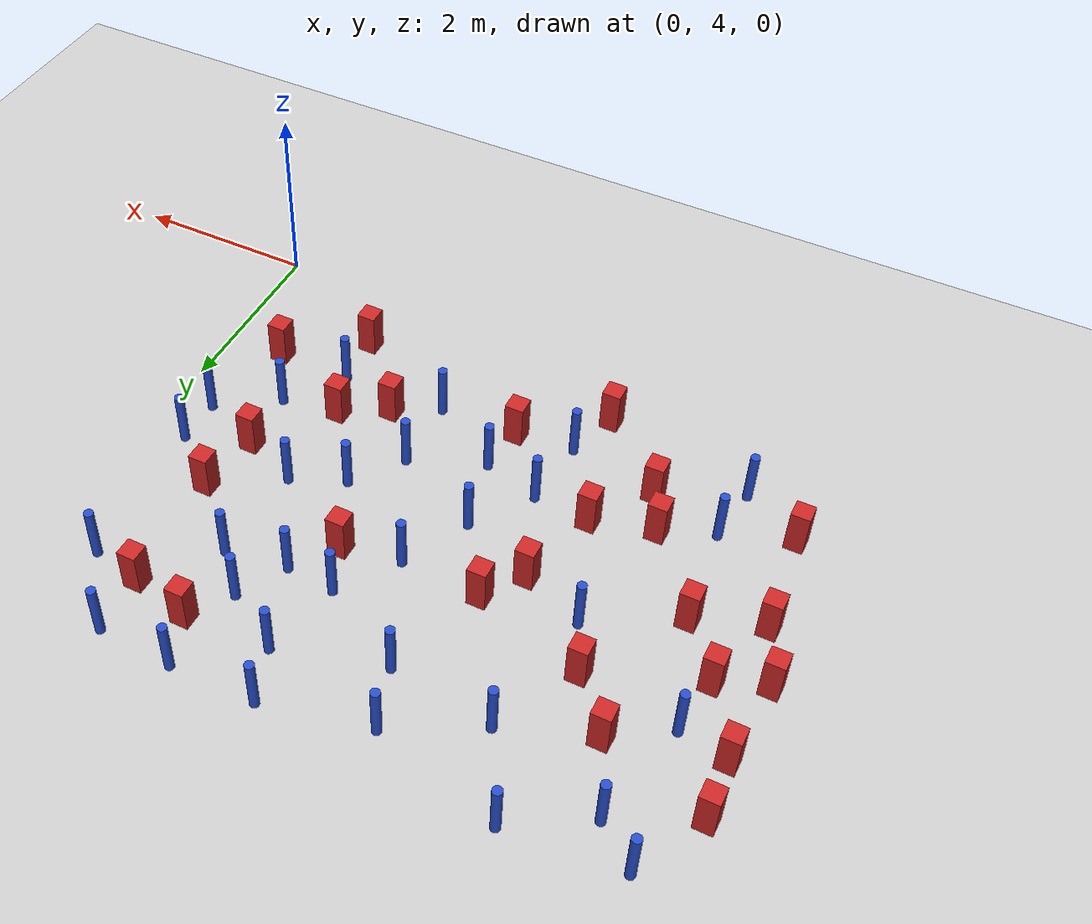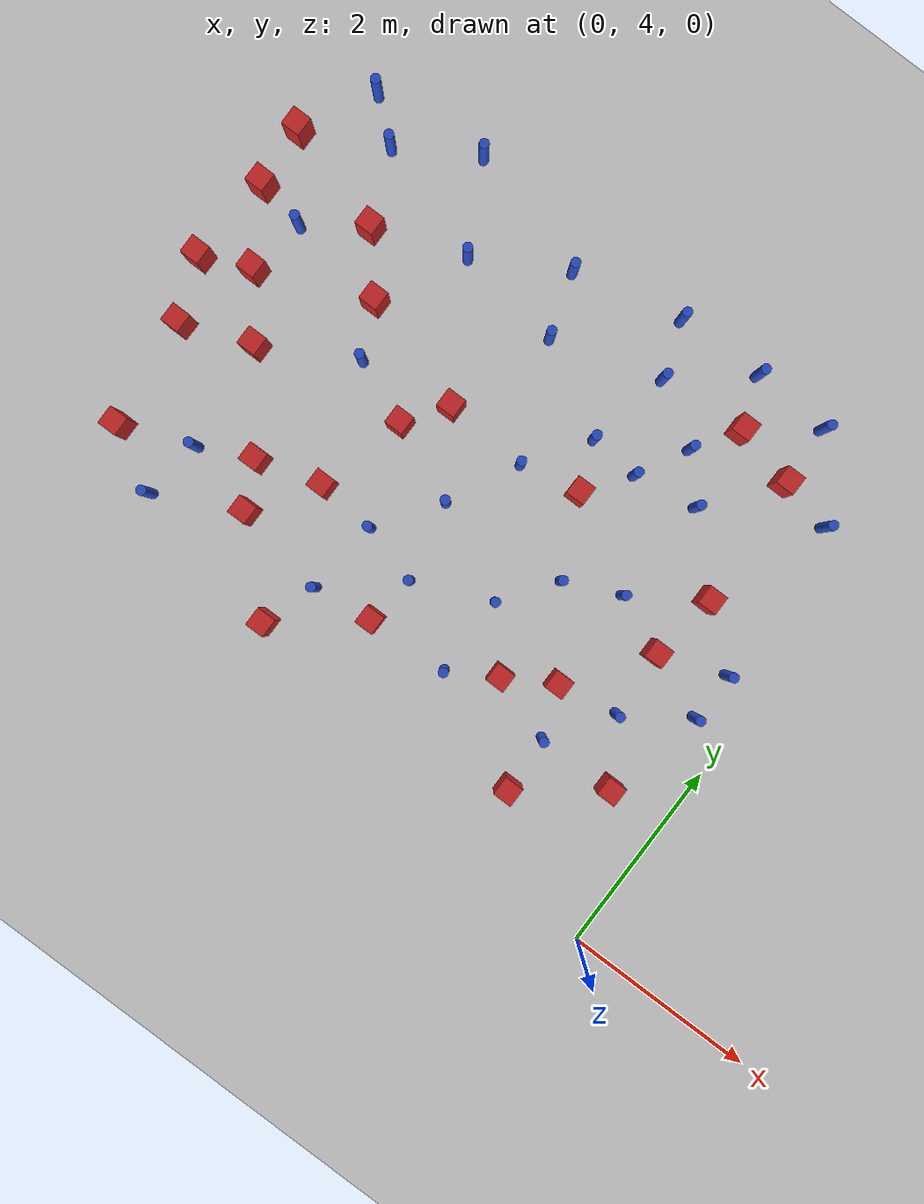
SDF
<sdf version="1.6">
 <world name="default">
  <model name="ground_plane">
   <static>1</static>
   <link name="link">
    <collision name="collision">
     <geometry><plane><normal>0 0 1</normal><size>100 100</size></plane></geometry>
     <surface><friction><ode><mu>100</mu><mu2>50</mu2></ode></friction></surface>
    </collision>
    <visual name="visual">
     <cast_shadows>0</cast_shadows>
     <geometry><plane><normal>0 0 1</normal><size>100 100</size></plane></geometry>
     <material>
      <ambient>1.0 1.0 1.0 1.0</ambient>
      <diffuse>0.8 0.8 0.8 1.0</diffuse>
      <specular>0.01 0.01 0.01 1.000000</specular>
     </material>
    </visual>
   </link>
  </model>
  <model name="square_post_obstacle0">
   <static>true</static>
   <pose>-4.36775121202 6.96467512662 -6.11067671241e-07 -5.50515727128e-06 -8.79689657224e-07 2.37013304536e-05</pose>
   <link name="link">
    <pose>0 0 0.25 0 -0 0</pose>
    <inertial>
     <mass>100</mass>
     <inertia>
      <ixx>0.166667</ixx>
      <ixy>0</ixy>
      <ixz>0</ixz>
      <iyy>0.166667</iyy>
      <iyz>0</iyz>
      <izz>0.166667</izz>
     </inertia>
    </inertial>
    <collision name="collision"><geometry><box><size>.2 .2 .5</size></box></geometry></collision>
    <visual name="visual">
     <geometry><box><size>.2 .2 .5</size></box></geometry>
     <material>
      <script><name>Gazebo/Red</name><uri>file://media/materials/scripts/gazebo.material</uri></script>
     </material>
    </visual>
   </link>
  </model>
  <model name="square_post_obstacle4">
   <static>true</static>
   <pose>-1.65749616319 5.88070329068 -6.11067671241e-07 -5.50515727128e-06 -8.79689657224e-07 2.37013304536e-05</pose>
   <link name="link">
    <pose>0 0 0.25 0 -0 0</pose>
    <inertial>
     <mass>100</mass>
     <inertia>
      <ixx>0.166667</ixx>
      <ixy>0</ixy>
      <ixz>0</ixz>
      <iyy>0.166667</iyy>
      <iyz>0</iyz>
      <izz>0.166667</izz>
     </inertia>
    </inertial>
    <collision name="collision"><geometry><box><size>.2 .2 .5</size></box></geometry></collision>
    <visual name="visual">
     <geometry><box><size>.2 .2 .5</size></box></geometry>
     <material>
      <script><name>Gazebo/Red</name><uri>file://media/materials/scripts/gazebo.material</uri></script>
     </material>
    </visual>
   </link>
  </model>
  <model name="square_post_obstacle15">
   <static>true</static>
   <pose>-5.04168076702 5.39787669439 -6.11067671241e-07 -5.50515727128e-06 -8.79689657224e-07 2.37013304536e-05</pose>
   <link name="link">
    <pose>0 0 0.25 0 -0 0</pose>
    <inertial>
     <mass>100</mass>
     <inertia>
      <ixx>0.166667</ixx>
      <ixy>0</ixy>
      <ixz>0</ixz>
      <iyy>0.166667</iyy>
      <iyz>0</iyz>
      <izz>0.166667</izz>
     </inertia>
    </inertial>
    <collision name="collision"><geometry><box><size>.2 .2 .5</size></box></geometry></collision>
    <visual name="visual">
     <geometry><box><size>.2 .2 .5</size></box></geometry>
     <material>
      <script><name>Gazebo/Red</name><uri>file://media/materials/scripts/gazebo.material</uri></script>
     </material>
    </visual>
   </link>
  </model>
  <model name="square_post_obstacle16">
   <static>true</static>
   <pose>-6.51756934402 5.33370531011 -6.11067671241e-07 -5.50515727128e-06 -8.79689657224e-07 2.37013304536e-05</pose>
   <link name="link">
    <pose>0 0 0.25 0 -0 0</pose>
    <inertial>
     <mass>100</mass>
     <inertia>
      <ixx>0.166667</ixx>
      <ixy>0</ixy>
      <ixz>0</ixz>
      <iyy>0.166667</iyy>
      <iyz>0</iyz>
      <izz>0.166667</izz>
     </inertia>
    </inertial>
    <collision name="collision"><geometry><box><size>.2 .2 .5</size></box></geometry></collision>
    <visual name="visual">
     <geometry><box><size>.2 .2 .5</size></box></geometry>
     <material>
      <script><name>Gazebo/Red</name><uri>file://media/materials/scripts/gazebo.material</uri></script>
     </material>
    </visual>
   </link>
  </model>
  <model name="pole_obstacle10">
   <static>true</static>
   <pose>-3.2098187899 7.34159491129 -9.47619616065e-06 5.49618799738e-07 2.3631041406e-07 -1.55090534801e-07</pose>
   <link name="link">
    <pose>0 0 0.3 0 -0 0</pose>
    <inertial>
     <mass>1</mass>
     <inertia><ixx>0.145833</ixx><ixy>0</ixy><ixz>0</ixz><iyy>0.145833</iyy><iyz>0</iyz><izz>0.125</izz></inertia>
    </inertial>
    <collision name="collision">
     <geometry><cylinder><radius>0.05</radius><length>.6</length></cylinder></geometry>
    </collision>
    <visual name="visual">
     <geometry><cylinder><radius>0.05</radius><length>.6</length></cylinder></geometry>
     <material>
      <script><name>Gazebo/Blue</name><uri>file://media/materials/scripts/gazebo.material</uri></script>
     </material>
    </visual>
   </link>
  </model>
  <model name="pole_obstacle17">
   <static>true</static>
   <pose>-1.90209949567 9.40279424727 -9.47619616065e-06 5.49618799737e-07 2.36310414046e-07 -1.55090534809e-07</pose>
   <link name="link">
    <pose>0 0 0.3 0 -0 0</pose>
    <inertial>
     <mass>1</mass>
     <inertia><ixx>0.145833</ixx><ixy>0</ixy><ixz>0</ixz><iyy>0.145833</iyy><iyz>0</iyz><izz>0.125</izz></inertia>
    </inertial>
    <collision name="collision">
     <geometry><cylinder><radius>0.05</radius><length>.6</length></cylinder></geometry>
    </collision>
    <visual name="visual">
     <geometry><cylinder><radius>0.05</radius><length>.6</length></cylinder></geometry>
     <material>
      <script><name>Gazebo/Blue</name><uri>file://media/materials/scripts/gazebo.material</uri></script>
     </material>
    </visual>
   </link>
  </model>
  <model name="pole_obstacle20">
   <static>true</static>
   <pose>-0.403235105057 6.91668516056 -9.47619616065e-06 5.49618799737e-07 2.36310414065e-07 -1.55090534796e-07</pose>
   <link name="link">
    <pose>0 0 0.3 0 -0 0</pose>
    <inertial>
     <mass>1</mass>
     <inertia><ixx>0.145833</ixx><ixy>0</ixy><ixz>0</ixz><iyy>0.145833</iyy><iyz>0</iyz><izz>0.125</izz></inertia>
    </inertial>
    <collision name="collision">
     <geometry><cylinder><radius>0.05</radius><length>.6</length></cylinder></geometry>
    </collision>
    <visual name="visual">
     <geometry><cylinder><radius>0.05</radius><length>.6</length></cylinder></geometry>
     <material>
      <script><name>Gazebo/Blue</name><uri>file://media/materials/scripts/gazebo.material</uri></script>
     </material>
    </visual>
   </link>
  </model>
  <model name="pole_obstacle25">
   <static>true</static>
   <pose>-2.6118868807 8.81742072287 -9.4761961606e-06 5.49618799729e-07 2.36310414e-07 -1.55090534824e-07</pose>
   <link name="link">
    <pose>0 0 0.3 0 -0 0</pose>
    <inertial>
     <mass>1</mass>
     <inertia><ixx>0.145833</ixx><ixy>0</ixy><ixz>0</ixz><iyy>0.145833</iyy><iyz>0</iyz><izz>0.125</izz></inertia>
    </inertial>
    <collision name="collision">
     <geometry><cylinder><radius>0.05</radius><length>.6</length></cylinder></geometry>
    </collision>
    <visual name="visual">
     <geometry><cylinder><radius>0.05</radius><length>.6</length></cylinder></geometry>
     <material>
      <script><name>Gazebo/Blue</name><uri>file://media/materials/scripts/gazebo.material</uri></script>
     </material>
    </visual>
   </link>
  </model>
  <model name="pole_obstacle27">
   <static>true</static>
   <pose>-6.04042868979 9.02992011734 -9.47619616065e-06 5.49618799737e-07 2.36310414065e-07 -1.55090534796e-07</pose>
   <link name="link">
    <pose>0 0 0.3 0 -0 0</pose>
    <inertial>
     <mass>1</mass>
     <inertia><ixx>0.145833</ixx><ixy>0</ixy><ixz>0</ixz><iyy>0.145833</iyy><iyz>0</iyz><izz>0.125</izz></inertia>
    </inertial>
    <collision name="collision">
     <geometry><cylinder><radius>0.05</radius><length>.6</length></cylinder></geometry>
    </collision>
    <visual name="visual">
     <geometry><cylinder><radius>0.05</radius><length>.6</length></cylinder></geometry>
     <material>
      <script><name>Gazebo/Blue</name><uri>file://media/materials/scripts/gazebo.material</uri></script>
     </material>
    </visual>
   </link>
  </model>
  <model name="pole_obstacle28">
   <static>true</static>
   <pose>-3.71763309645 8.48386491022 -9.4761961606e-06 5.49618799729e-07 2.36310414e-07 -1.55090534824e-07</pose>
   <link name="link">
    <pose>0 0 0.3 0 -0 0</pose>
    <inertial>
     <mass>1</mass>
     <inertia><ixx>0.145833</ixx><ixy>0</ixy><ixz>0</ixz><iyy>0.145833</iyy><iyz>0</iyz><izz>0.125</izz></inertia>
    </inertial>
    <collision name="collision">
     <geometry><cylinder><radius>0.05</radius><length>.6</length></cylinder></geometry>
    </collision>
    <visual name="visual">
     <geometry><cylinder><radius>0.05</radius><length>.6</length></cylinder></geometry>
     <material>
      <script><name>Gazebo/Blue</name><uri>file://media/materials/scripts/gazebo.material</uri></script>
     </material>
    </visual>
   </link>
  </model>
  <model name="pole_obstacle32">
   <static>true</static>
   <pose>-6.45330706016 9.3699237772 -9.47619616065e-06 5.49618799737e-07 2.36310414065e-07 -1.55090534796e-07</pose>
   <link name="link">
    <pose>0 0 0.3 0 -0 0</pose>
    <inertial>
     <mass>1</mass>
     <inertia><ixx>0.145833</ixx><ixy>0</ixy><ixz>0</ixz><iyy>0.145833</iyy><iyz>0</iyz><izz>0.125</izz></inertia>
    </inertial>
    <collision name="collision">
     <geometry><cylinder><radius>0.05</radius><length>.6</length></cylinder></geometry>
    </collision>
    <visual name="visual">
     <geometry><cylinder><radius>0.05</radius><length>.6</length></cylinder></geometry>
     <material>
      <script><name>Gazebo/Blue</name><uri>file://media/materials/scripts/gazebo.material</uri></script>
     </material>
    </visual>
   </link>
  </model>
  <model name="square_post_obstacle35">
   <static>true</static>
   <pose>-0.657242514761 5.37359519306 -6.11067671241e-07 -5.50515727128e-06 -8.79689657224e-07 2.37013304536e-05</pose>
   <link name="link">
    <pose>0 0 0.25 0 -0 0</pose>
    <inertial>
     <mass>100</mass>
     <inertia>
      <ixx>0.166667</ixx>
      <ixy>0</ixy>
      <ixz>0</ixz>
      <iyy>0.166667</iyy>
      <iyz>0</iyz>
      <izz>0.166667</izz>
     </inertia>
    </inertial>
    <collision name="collision"><geometry><box><size>.2 .2 .5</size></box></geometry></collision>
    <visual name="visual">
     <geometry><box><size>.2 .2 .5</size></box></geometry>
     <material>
      <script><name>Gazebo/Red</name><uri>file://media/materials/scripts/gazebo.material</uri></script>
     </material>
    </visual>
   </link>
  </model>
  <model name="pole_obstacle35">
   <static>true</static>
   <pose>-2.60899956291 6.13930942176 -9.47619616065e-06 5.49618799738e-07 2.3631041406e-07 -1.55090534801e-07</pose>
   <link name="link">
    <pose>0 0 0.3 0 -0 0</pose>
    <inertial>
     <mass>1</mass>
     <inertia><ixx>0.145833</ixx><ixy>0</ixy><ixz>0</ixz><iyy>0.145833</iyy><iyz>0</iyz><izz>0.125</izz></inertia>
    </inertial>
    <collision name="collision">
     <geometry><cylinder><radius>0.05</radius><length>.6</length></cylinder></geometry>
    </collision>
    <visual name="visual">
     <geometry><cylinder><radius>0.05</radius><length>.6</length></cylinder></geometry>
     <material>
      <script><name>Gazebo/Blue</name><uri>file://media/materials/scripts/gazebo.material</uri></script>
     </material>
    </visual>
   </link>
  </model>
  <model name="square_post_obstacle36">
   <static>true</static>
   <pose>-6.83716105573 8.62675024145 -6.11067671241e-07 -5.50515727128e-06 -8.79689657224e-07 2.37013304536e-05</pose>
   <link name="link">
    <pose>0 0 0.25 0 -0 0</pose>
    <inertial>
     <mass>100</mass>
     <inertia>
      <ixx>0.166667</ixx>
      <ixy>0</ixy>
      <ixz>0</ixz>
      <iyy>0.166667</iyy>
      <iyz>0</iyz>
      <izz>0.166667</izz>
     </inertia>
    </inertial>
    <collision name="collision"><geometry><box><size>.2 .2 .5</size></box></geometry></collision>
    <visual name="visual">
     <geometry><box><size>.2 .2 .5</size></box></geometry>
     <material>
      <script><name>Gazebo/Red</name><uri>file://media/materials/scripts/gazebo.material</uri></script>
     </material>
    </visual>
   </link>
  </model>
  <model name="pole_obstacle40">
   <static>true</static>
   <pose>-2.60498700411 5.31970703041 -9.47619616065e-06 5.49618799738e-07 2.3631041406e-07 -1.55090534801e-07</pose>
   <link name="link">
    <pose>0 0 0.3 0 -0 0</pose>
    <inertial>
     <mass>1</mass>
     <inertia><ixx>0.145833</ixx><ixy>0</ixy><ixz>0</ixz><iyy>0.145833</iyy><iyz>0</iyz><izz>0.125</izz></inertia>
    </inertial>
    <collision name="collision">
     <geometry><cylinder><radius>0.05</radius><length>.6</length></cylinder></geometry>
    </collision>
    <visual name="visual">
     <geometry><cylinder><radius>0.05</radius><length>.6</length></cylinder></geometry>
     <material>
      <script><name>Gazebo/Blue</name><uri>file://media/materials/scripts/gazebo.material</uri></script>
     </material>
    </visual>
   </link>
  </model>
  <model name="pole_obstacle44">
   <static>true</static>
   <pose>-2.22651225853 6.68115342986 -9.47619616065e-06 5.49618799738e-07 2.3631041406e-07 -1.55090534801e-07</pose>
   <link name="link">
    <pose>0 0 0.3 0 -0 0</pose>
    <inertial>
     <mass>1</mass>
     <inertia><ixx>0.145833</ixx><ixy>0</ixy><ixz>0</ixz><iyy>0.145833</iyy><iyz>0</iyz><izz>0.125</izz></inertia>
    </inertial>
    <collision name="collision">
     <geometry><cylinder><radius>0.05</radius><length>.6</length></cylinder></geometry>
    </collision>
    <visual name="visual">
     <geometry><cylinder><radius>0.05</radius><length>.6</length></cylinder></geometry>
     <material>
      <script><name>Gazebo/Blue</name><uri>file://media/materials/scripts/gazebo.material</uri></script>
     </material>
    </visual>
   </link>
  </model>
  <model name="square_post_obstacle46">
   <static>true</static>
   <pose>-6.79474108668 7.99877416249 -6.11067671241e-07 -5.50515727128e-06 -8.79689657224e-07 2.37013304536e-05</pose>
   <link name="link">
    <pose>0 0 0.25 0 -0 0</pose>
    <inertial>
     <mass>100</mass>
     <inertia>
      <ixx>0.166667</ixx>
      <ixy>0</ixy>
      <ixz>0</ixz>
      <iyy>0.166667</iyy>
      <iyz>0</iyz>
      <izz>0.166667</izz>
     </inertia>
    </inertial>
    <collision name="collision"><geometry><box><size>.2 .2 .5</size></box></geometry></collision>
    <visual name="visual">
     <geometry><box><size>.2 .2 .5</size></box></geometry>
     <material>
      <script><name>Gazebo/Red</name><uri>file://media/materials/scripts/gazebo.material</uri></script>
     </material>
    </visual>
   </link>
  </model>
  <model name="pole_obstacle47">
   <static>true</static>
   <pose>-0.408108234437 6.40497784872 -9.47619616065e-06 5.49618799737e-07 2.36310414065e-07 -1.55090534796e-07</pose>
   <link name="link">
    <pose>0 0 0.3 0 -0 0</pose>
    <inertial>
     <mass>1</mass>
     <inertia><ixx>0.145833</ixx><ixy>0</ixy><ixz>0</ixz><iyy>0.145833</iyy><iyz>0</iyz><izz>0.125</izz></inertia>
    </inertial>
    <collision name="collision">
     <geometry><cylinder><radius>0.05</radius><length>.6</length></cylinder></geometry>
    </collision>
    <visual name="visual">
     <geometry><cylinder><radius>0.05</radius><length>.6</length></cylinder></geometry>
     <material>
      <script><name>Gazebo/Blue</name><uri>file://media/materials/scripts/gazebo.material</uri></script>
     </material>
    </visual>
   </link>
  </model>
  <model name="square_post_obstacle53">
   <static>true</static>
   <pose>-3.45824758311 5.29231079637 -6.11067671241e-07 -5.50515727128e-06 -8.79689657224e-07 2.37013304536e-05</pose>
   <link name="link">
    <pose>0 0 0.25 0 -0 0</pose>
    <inertial>
     <mass>100</mass>
     <inertia>
      <ixx>0.166667</ixx>
      <ixy>0</ixy>
      <ixz>0</ixz>
      <iyy>0.166667</iyy>
      <iyz>0</iyz>
      <izz>0.166667</izz>
     </inertia>
    </inertial>
    <collision name="collision"><geometry><box><size>.2 .2 .5</size></box></geometry></collision>
    <visual name="visual">
     <geometry><box><size>.2 .2 .5</size></box></geometry>
     <material>
      <script><name>Gazebo/Red</name><uri>file://media/materials/scripts/gazebo.material</uri></script>
     </material>
    </visual>
   </link>
  </model>
  <model name="square_post_obstacle58">
   <static>true</static>
   <pose>-5.92664811069 6.72352702947 -6.11067671241e-07 -5.50515727128e-06 -8.79689657224e-07 2.37013304536e-05</pose>
   <link name="link">
    <pose>0 0 0.25 0 -0 0</pose>
    <inertial>
     <mass>100</mass>
     <inertia>
      <ixx>0.166667</ixx>
      <ixy>0</ixy>
      <ixz>0</ixz>
      <iyy>0.166667</iyy>
      <iyz>0</iyz>
      <izz>0.166667</izz>
     </inertia>
    </inertial>
    <collision name="collision"><geometry><box><size>.2 .2 .5</size></box></geometry></collision>
    <visual name="visual">
     <geometry><box><size>.2 .2 .5</size></box></geometry>
     <material>
      <script><name>Gazebo/Red</name><uri>file://media/materials/scripts/gazebo.material</uri></script>
     </material>
    </visual>
   </link>
  </model>
  <model name="square_post_obstacle63">
   <static>true</static>
   <pose>-1.08177401858 6.67963667109 -6.11067671241e-07 -5.50515727128e-06 -8.79689657224e-07 2.37013304536e-05</pose>
   <link name="link">
    <pose>0 0 0.25 0 -0 0</pose>
    <inertial>
     <mass>100</mass>
     <inertia>
      <ixx>0.166667</ixx>
      <ixy>0</ixy>
      <ixz>0</ixz>
      <iyy>0.166667</iyy>
      <iyz>0</iyz>
      <izz>0.166667</izz>
     </inertia>
    </inertial>
    <collision name="collision"><geometry><box><size>.2 .2 .5</size></box></geometry></collision>
    <visual name="visual">
     <geometry><box><size>.2 .2 .5</size></box></geometry>
     <material>
      <script><name>Gazebo/Red</name><uri>file://media/materials/scripts/gazebo.material</uri></script>
     </material>
    </visual>
   </link>
  </model>
  <model name="square_post_obstacle66">
   <static>true</static>
   <pose>-6.63202839177 6.46490370239 -6.11067671241e-07 -5.50515727128e-06 -8.79689657224e-07 2.37013304536e-05</pose>
   <link name="link">
    <pose>0 0 0.25 0 -0 0</pose>
    <inertial>
     <mass>100</mass>
     <inertia>
      <ixx>0.166667</ixx>
      <ixy>0</ixy>
      <ixz>0</ixz>
      <iyy>0.166667</iyy>
      <iyz>0</iyz>
      <izz>0.166667</izz>
     </inertia>
    </inertial>
    <collision name="collision"><geometry><box><size>.2 .2 .5</size></box></geometry></collision>
    <visual name="visual">
     <geometry><box><size>.2 .2 .5</size></box></geometry>
     <material>
      <script><name>Gazebo/Red</name><uri>file://media/materials/scripts/gazebo.material</uri></script>
     </material>
    </visual>
   </link>
  </model>
  <model name="square_post_obstacle75">
   <static>true</static>
   <pose>-4.26387419808 4.65417128725 -6.11067671241e-07 -5.50515727128e-06 -8.79689657224e-07 2.37013304536e-05</pose>
   <link name="link">
    <pose>0 0 0.25 0 -0 0</pose>
    <inertial>
     <mass>100</mass>
     <inertia>
      <ixx>0.166667</ixx>
      <ixy>0</ixy>
      <ixz>0</ixz>
      <iyy>0.166667</iyy>
      <iyz>0</iyz>
      <izz>0.166667</izz>
     </inertia>
    </inertial>
    <collision name="collision"><geometry><box><size>.2 .2 .5</size></box></geometry></collision>
    <visual name="visual">
     <geometry><box><size>.2 .2 .5</size></box></geometry>
     <material>
      <script><name>Gazebo/Red</name><uri>file://media/materials/scripts/gazebo.material</uri></script>
     </material>
    </visual>
   </link>
  </model>
  <model name="pole_obstacle70">
   <static>true</static>
   <pose>-3.56325731318 6.61824658838 -9.47619616065e-06 5.49618799738e-07 2.3631041406e-07 -1.55090534801e-07</pose>
   <link name="link">
    <pose>0 0 0.3 0 -0 0</pose>
    <inertial>
     <mass>1</mass>
     <inertia><ixx>0.145833</ixx><ixy>0</ixy><ixz>0</ixz><iyy>0.145833</iyy><iyz>0</iyz><izz>0.125</izz></inertia>
    </inertial>
    <collision name="collision">
     <geometry><cylinder><radius>0.05</radius><length>.6</length></cylinder></geometry>
    </collision>
    <visual name="visual">
     <geometry><cylinder><radius>0.05</radius><length>.6</length></cylinder></geometry>
     <material>
      <script><name>Gazebo/Blue</name><uri>file://media/materials/scripts/gazebo.material</uri></script>
     </material>
    </visual>
   </link>
  </model>
  <model name="pole_obstacle76">
   <static>true</static>
   <pose>-5.02693889035 7.22763337648 -9.47619616065e-06 5.49618799737e-07 2.36310414037e-07 -1.55090534814e-07</pose>
   <link name="link">
    <pose>0 0 0.3 0 -0 0</pose>
    <inertial>
     <mass>1</mass>
     <inertia><ixx>0.145833</ixx><ixy>0</ixy><ixz>0</ixz><iyy>0.145833</iyy><iyz>0</iyz><izz>0.125</izz></inertia>
    </inertial>
    <collision name="collision">
     <geometry><cylinder><radius>0.05</radius><length>.6</length></cylinder></geometry>
    </collision>
    <visual name="visual">
     <geometry><cylinder><radius>0.05</radius><length>.6</length></cylinder></geometry>
     <material>
      <script><name>Gazebo/Blue</name><uri>file://media/materials/scripts/gazebo.material</uri></script>
     </material>
    </visual>
   </link>
  </model>
  <model name="square_post_obstacle80">
   <static>true</static>
   <pose>-6.87133850633 7.08793085189 -6.11067671241e-07 -5.50515727128e-06 -8.79689657224e-07 2.37013304536e-05</pose>
   <link name="link">
    <pose>0 0 0.25 0 -0 0</pose>
    <inertial>
     <mass>100</mass>
     <inertia>
      <ixx>0.166667</ixx>
      <ixy>0</ixy>
      <ixz>0</ixz>
      <iyy>0.166667</iyy>
      <iyz>0</iyz>
      <izz>0.166667</izz>
     </inertia>
    </inertial>
    <collision name="collision"><geometry><box><size>.2 .2 .5</size></box></geometry></collision>
    <visual name="visual">
     <geometry><box><size>.2 .2 .5</size></box></geometry>
     <material>
      <script><name>Gazebo/Red</name><uri>file://media/materials/scripts/gazebo.material</uri></script>
     </material>
    </visual>
   </link>
  </model>
  <model name="pole_obstacle87">
   <static>true</static>
   <pose>-3.92366138487 9.12555584919 -9.4761961606e-06 5.49618799729e-07 2.36310414e-07 -1.55090534824e-07</pose>
   <link name="link">
    <pose>0 0 0.3 0 -0 0</pose>
    <inertial>
     <mass>1</mass>
     <inertia><ixx>0.145833</ixx><ixy>0</ixy><ixz>0</ixz><iyy>0.145833</iyy><iyz>0</iyz><izz>0.125</izz></inertia>
    </inertial>
    <collision name="collision">
     <geometry><cylinder><radius>0.05</radius><length>.6</length></cylinder></geometry>
    </collision>
    <visual name="visual">
     <geometry><cylinder><radius>0.05</radius><length>.6</length></cylinder></geometry>
     <material>
      <script><name>Gazebo/Blue</name><uri>file://media/materials/scripts/gazebo.material</uri></script>
     </material>
    </visual>
   </link>
  </model>
  <model name="square_post_obstacle82">
   <static>true</static>
   <pose>-2.14103028906 5.60005458471 -6.11067671241e-07 -5.50515727128e-06 -8.79689657224e-07 2.37013304536e-05</pose>
   <link name="link">
    <pose>0 0 0.25 0 -0 0</pose>
    <inertial>
     <mass>100</mass>
     <inertia>
      <ixx>0.166667</ixx>
      <ixy>0</ixy>
      <ixz>0</ixz>
      <iyy>0.166667</iyy>
      <iyz>0</iyz>
      <izz>0.166667</izz>
     </inertia>
    </inertial>
    <collision name="collision"><geometry><box><size>.2 .2 .5</size></box></geometry></collision>
    <visual name="visual">
     <geometry><box><size>.2 .2 .5</size></box></geometry>
     <material>
      <script><name>Gazebo/Red</name><uri>file://media/materials/scripts/gazebo.material</uri></script>
     </material>
    </visual>
   </link>
  </model>
  <model name="pole_obstacle97">
   <static>true</static>
   <pose>-5.80650299912 5.60463683839 -9.47619616065e-06 5.49618799737e-07 2.36310414037e-07 -1.55090534814e-07</pose>
   <link name="link">
    <pose>0 0 0.3 0 -0 0</pose>
    <inertial>
     <mass>1</mass>
     <inertia><ixx>0.145833</ixx><ixy>0</ixy><ixz>0</ixz><iyy>0.145833</iyy><iyz>0</iyz><izz>0.125</izz></inertia>
    </inertial>
    <collision name="collision">
     <geometry><cylinder><radius>0.05</radius><length>.6</length></cylinder></geometry>
    </collision>
    <visual name="visual">
     <geometry><cylinder><radius>0.05</radius><length>.6</length></cylinder></geometry>
     <material>
      <script><name>Gazebo/Blue</name><uri>file://media/materials/scripts/gazebo.material</uri></script>
     </material>
    </visual>
   </link>
  </model>
  <model name="pole_obstacle102">
   <static>true</static>
   <pose>-3.38737771692 5.81071426034 -9.47619616065e-06 5.49618799738e-07 2.3631041406e-07 -1.55090534801e-07</pose>
   <link name="link">
    <pose>0 0 0.3 0 -0 0</pose>
    <inertial>
     <mass>1</mass>
     <inertia><ixx>0.145833</ixx><ixy>0</ixy><ixz>0</ixz><iyy>0.145833</iyy><iyz>0</iyz><izz>0.125</izz></inertia>
    </inertial>
    <collision name="collision">
     <geometry><cylinder><radius>0.05</radius><length>.6</length></cylinder></geometry>
    </collision>
    <visual name="visual">
     <geometry><cylinder><radius>0.05</radius><length>.6</length></cylinder></geometry>
     <material>
      <script><name>Gazebo/Blue</name><uri>file://media/materials/scripts/gazebo.material</uri></script>
     </material>
    </visual>
   </link>
  </model>
  <model name="pole_obstacle109">
   <static>true</static>
   <pose>-0.517932447151 8.61292572311 -9.47619616065e-06 5.49618799737e-07 2.36310414028e-07 -1.55090534819e-07</pose>
   <link name="link">
    <pose>0 0 0.3 0 -0 0</pose>
    <inertial>
     <mass>1</mass>
     <inertia><ixx>0.145833</ixx><ixy>0</ixy><ixz>0</ixz><iyy>0.145833</iyy><iyz>0</iyz><izz>0.125</izz></inertia>
    </inertial>
    <collision name="collision">
     <geometry><cylinder><radius>0.05</radius><length>.6</length></cylinder></geometry>
    </collision>
    <visual name="visual">
     <geometry><cylinder><radius>0.05</radius><length>.6</length></cylinder></geometry>
     <material>
      <script><name>Gazebo/Blue</name><uri>file://media/materials/scripts/gazebo.material</uri></script>
     </material>
    </visual>
   </link>
  </model>
  <model name="square_post_obstacle101">
   <static>true</static>
   <pose>-5.72206664603 8.29399079468 -6.11067671241e-07 -5.50515727128e-06 -8.79689657224e-07 2.37013304536e-05</pose>
   <link name="link">
    <pose>0 0 0.25 0 -0 0</pose>
    <inertial>
     <mass>100</mass>
     <inertia>
      <ixx>0.166667</ixx>
      <ixy>0</ixy>
      <ixz>0</ixz>
      <iyy>0.166667</iyy>
      <iyz>0</iyz>
      <izz>0.166667</izz>
     </inertia>
    </inertial>
    <collision name="collision"><geometry><box><size>.2 .2 .5</size></box></geometry></collision>
    <visual name="visual">
     <geometry><box><size>.2 .2 .5</size></box></geometry>
     <material>
      <script><name>Gazebo/Red</name><uri>file://media/materials/scripts/gazebo.material</uri></script>
     </material>
    </visual>
   </link>
  </model>
  <model name="pole_obstacle114">
   <static>true</static>
   <pose>-1.67037229544 6.92799265446 -9.47619616065e-06 5.49618799737e-07 2.36310414061e-07 -1.550905348e-07</pose>
   <link name="link">
    <pose>0 0 0.3 0 -0 0</pose>
    <inertial>
     <mass>1</mass>
     <inertia><ixx>0.145833</ixx><ixy>0</ixy><ixz>0</ixz><iyy>0.145833</iyy><iyz>0</iyz><izz>0.125</izz></inertia>
    </inertial>
    <collision name="collision">
     <geometry><cylinder><radius>0.05</radius><length>.6</length></cylinder></geometry>
    </collision>
    <visual name="visual">
     <geometry><cylinder><radius>0.05</radius><length>.6</length></cylinder></geometry>
     <material>
      <script><name>Gazebo/Blue</name><uri>file://media/materials/scripts/gazebo.material</uri></script>
     </material>
    </visual>
   </link>
  </model>
  <model name="pole_obstacle121">
   <static>true</static>
   <pose>-5.27555187155 9.49643963434 -9.47619616065e-06 5.49618799737e-07 2.36310414065e-07 -1.55090534796e-07</pose>
   <link name="link">
    <pose>0 0 0.3 0 -0 0</pose>
    <inertial>
     <mass>1</mass>
     <inertia><ixx>0.145833</ixx><ixy>0</ixy><ixz>0</ixz><iyy>0.145833</iyy><iyz>0</iyz><izz>0.125</izz></inertia>
    </inertial>
    <collision name="collision">
     <geometry><cylinder><radius>0.05</radius><length>.6</length></cylinder></geometry>
    </collision>
    <visual name="visual">
     <geometry><cylinder><radius>0.05</radius><length>.6</length></cylinder></geometry>
     <material>
      <script><name>Gazebo/Blue</name><uri>file://media/materials/scripts/gazebo.material</uri></script>
     </material>
    </visual>
   </link>
  </model>
  <model name="square_post_obstacle119">
   <static>true</static>
   <pose>-6.37513384591 7.29701682706 -6.11067671241e-07 -5.50515727128e-06 -8.79689657224e-07 2.37013304536e-05</pose>
   <link name="link">
    <pose>0 0 0.25 0 -0 0</pose>
    <inertial>
     <mass>100</mass>
     <inertia>
      <ixx>0.166667</ixx>
      <ixy>0</ixy>
      <ixz>0</ixz>
      <iyy>0.166667</iyy>
      <iyz>0</iyz>
      <izz>0.166667</izz>
     </inertia>
    </inertial>
    <collision name="collision"><geometry><box><size>.2 .2 .5</size></box></geometry></collision>
    <visual name="visual">
     <geometry><box><size>.2 .2 .5</size></box></geometry>
     <material>
      <script><name>Gazebo/Red</name><uri>file://media/materials/scripts/gazebo.material</uri></script>
     </material>
    </visual>
   </link>
  </model>
  <model name="square_post_obstacle121">
   <static>true</static>
   <pose>-5.26655114665 7.75356603395 -6.11067671241e-07 -5.50515727128e-06 -8.79689657224e-07 2.37013304536e-05</pose>
   <link name="link">
    <pose>0 0 0.25 0 -0 0</pose>
    <inertial>
     <mass>100</mass>
     <inertia>
      <ixx>0.166667</ixx>
      <ixy>0</ixy>
      <ixz>0</ixz>
      <iyy>0.166667</iyy>
      <iyz>0</iyz>
      <izz>0.166667</izz>
     </inertia>
    </inertial>
    <collision name="collision"><geometry><box><size>.2 .2 .5</size></box></geometry></collision>
    <visual name="visual">
     <geometry><box><size>.2 .2 .5</size></box></geometry>
     <material>
      <script><name>Gazebo/Red</name><uri>file://media/materials/scripts/gazebo.material</uri></script>
     </material>
    </visual>
   </link>
  </model>
  <model name="pole_obstacle143">
   <static>true</static>
   <pose>-5.89027748801 4.9777301575 -9.47619616065e-06 5.49618799737e-07 2.36310414037e-07 -1.55090534814e-07</pose>
   <link name="link">
    <pose>0 0 0.3 0 -0 0</pose>
    <inertial>
     <mass>1</mass>
     <inertia><ixx>0.145833</ixx><ixy>0</ixy><ixz>0</ixz><iyy>0.145833</iyy><iyz>0</iyz><izz>0.125</izz></inertia>
    </inertial>
    <collision name="collision">
     <geometry><cylinder><radius>0.05</radius><length>.6</length></cylinder></geometry>
    </collision>
    <visual name="visual">
     <geometry><cylinder><radius>0.05</radius><length>.6</length></cylinder></geometry>
     <material>
      <script><name>Gazebo/Blue</name><uri>file://media/materials/scripts/gazebo.material</uri></script>
     </material>
    </visual>
   </link>
  </model>
  <model name="pole_obstacle146">
   <static>true</static>
   <pose>-2.8094771079 9.38460287068 -9.4761961606e-06 5.49618799729e-07 2.36310414e-07 -1.55090534824e-07</pose>
   <link name="link">
    <pose>0 0 0.3 0 -0 0</pose>
    <inertial>
     <mass>1</mass>
     <inertia><ixx>0.145833</ixx><ixy>0</ixy><ixz>0</ixz><iyy>0.145833</iyy><iyz>0</iyz><izz>0.125</izz></inertia>
    </inertial>
    <collision name="collision">
     <geometry><cylinder><radius>0.05</radius><length>.6</length></cylinder></geometry>
    </collision>
    <visual name="visual">
     <geometry><cylinder><radius>0.05</radius><length>.6</length></cylinder></geometry>
     <material>
      <script><name>Gazebo/Blue</name><uri>file://media/materials/scripts/gazebo.material</uri></script>
     </material>
    </visual>
   </link>
  </model>
  <model name="square_post_obstacle138">
   <static>true</static>
   <pose>-4.07399203316 7.38581984988 -6.11067671241e-07 -5.50515727128e-06 -8.79689657224e-07 2.37013304536e-05</pose>
   <link name="link">
    <pose>0 0 0.25 0 -0 0</pose>
    <inertial>
     <mass>100</mass>
     <inertia>
      <ixx>0.166667</ixx>
      <ixy>0</ixy>
      <ixz>0</ixz>
      <iyy>0.166667</iyy>
      <iyz>0</iyz>
      <izz>0.166667</izz>
     </inertia>
    </inertial>
    <collision name="collision"><geometry><box><size>.2 .2 .5</size></box></geometry></collision>
    <visual name="visual">
     <geometry><box><size>.2 .2 .5</size></box></geometry>
     <material>
      <script><name>Gazebo/Red</name><uri>file://media/materials/scripts/gazebo.material</uri></script>
     </material>
    </visual>
   </link>
  </model>
  <model name="square_post_obstacle148">
   <static>true</static>
   <pose>-1.71357395256 8.88058878771 -6.11067671241e-07 -5.50515727128e-06 -8.79689657224e-07 2.37013304536e-05</pose>
   <link name="link">
    <pose>0 0 0.25 0 -0 0</pose>
    <inertial>
     <mass>100</mass>
     <inertia>
      <ixx>0.166667</ixx>
      <ixy>0</ixy>
      <ixz>0</ixz>
      <iyy>0.166667</iyy>
      <iyz>0</iyz>
      <izz>0.166667</izz>
     </inertia>
    </inertial>
    <collision name="collision"><geometry><box><size>.2 .2 .5</size></box></geometry></collision>
    <visual name="visual">
     <geometry><box><size>.2 .2 .5</size></box></geometry>
     <material>
      <script><name>Gazebo/Red</name><uri>file://media/materials/scripts/gazebo.material</uri></script>
     </material>
    </visual>
   </link>
  </model>
  <model name="square_post_obstacle153">
   <static>true</static>
   <pose>-2.59848437482 7.46576263006 -6.11067671241e-07 -5.50515727128e-06 -8.79689657224e-07 2.37013304536e-05</pose>
   <link name="link">
    <pose>0 0 0.25 0 -0 0</pose>
    <inertial>
     <mass>100</mass>
     <inertia>
      <ixx>0.166667</ixx>
      <ixy>0</ixy>
      <ixz>0</ixz>
      <iyy>0.166667</iyy>
      <iyz>0</iyz>
      <izz>0.166667</izz>
     </inertia>
    </inertial>
    <collision name="collision"><geometry><box><size>.2 .2 .5</size></box></geometry></collision>
    <visual name="visual">
     <geometry><box><size>.2 .2 .5</size></box></geometry>
     <material>
      <script><name>Gazebo/Red</name><uri>file://media/materials/scripts/gazebo.material</uri></script>
     </material>
    </visual>
   </link>
  </model>
  <model name="square_post_obstacle157">
   <static>true</static>
   <pose>-4.60528616603 6.0438935402 -6.11067671241e-07 -5.50515727128e-06 -8.79689657224e-07 2.37013304536e-05</pose>
   <link name="link">
    <pose>0 0 0.25 0 -0 0</pose>
    <inertial>
     <mass>100</mass>
     <inertia>
      <ixx>0.166667</ixx>
      <ixy>0</ixy>
      <ixz>0</ixz>
      <iyy>0.166667</iyy>
      <iyz>0</iyz>
      <izz>0.166667</izz>
     </inertia>
    </inertial>
    <collision name="collision"><geometry><box><size>.2 .2 .5</size></box></geometry></collision>
    <visual name="visual">
     <geometry><box><size>.2 .2 .5</size></box></geometry>
     <material>
      <script><name>Gazebo/Red</name><uri>file://media/materials/scripts/gazebo.material</uri></script>
     </material>
    </visual>
   </link>
  </model>
  <model name="square_post_obstacle161">
   <static>true</static>
   <pose>-0.983715764431 7.38767072436 -6.11067671241e-07 -5.50515727128e-06 -8.79689657224e-07 2.37013304536e-05</pose>
   <link name="link">
    <pose>0 0 0.25 0 -0 0</pose>
    <inertial>
     <mass>100</mass>
     <inertia>
      <ixx>0.166667</ixx>
      <ixy>0</ixy>
      <ixz>0</ixz>
      <iyy>0.166667</iyy>
      <iyz>0</iyz>
      <izz>0.166667</izz>
     </inertia>
    </inertial>
    <collision name="collision"><geometry><box><size>.2 .2 .5</size></box></geometry></collision>
    <visual name="visual">
     <geometry><box><size>.2 .2 .5</size></box></geometry>
     <material>
      <script><name>Gazebo/Red</name><uri>file://media/materials/scripts/gazebo.material</uri></script>
     </material>
    </visual>
   </link>
  </model>
  <model name="pole_obstacle171">
   <static>true</static>
   <pose>-4.81518454954 8.63069309846 -9.47619616065e-06 5.49618799737e-07 2.36310414065e-07 -1.55090534796e-07</pose>
   <link name="link">
    <pose>0 0 0.3 0 -0 0</pose>
    <inertial>
     <mass>1</mass>
     <inertia><ixx>0.145833</ixx><ixy>0</ixy><ixz>0</ixz><iyy>0.145833</iyy><iyz>0</iyz><izz>0.125</izz></inertia>
    </inertial>
    <collision name="collision">
     <geometry><cylinder><radius>0.05</radius><length>.6</length></cylinder></geometry>
    </collision>
    <visual name="visual">
     <geometry><cylinder><radius>0.05</radius><length>.6</length></cylinder></geometry>
     <material>
      <script><name>Gazebo/Blue</name><uri>file://media/materials/scripts/gazebo.material</uri></script>
     </material>
    </visual>
   </link>
  </model>
  <model name="pole_obstacle177">
   <static>true</static>
   <pose>-2.271951455 7.91819381444 -9.47619616065e-06 5.49618799738e-07 2.3631041406e-07 -1.55090534801e-07</pose>
   <link name="link">
    <pose>0 0 0.3 0 -0 0</pose>
    <inertial>
     <mass>1</mass>
     <inertia><ixx>0.145833</ixx><ixy>0</ixy><ixz>0</ixz><iyy>0.145833</iyy><iyz>0</iyz><izz>0.125</izz></inertia>
    </inertial>
    <collision name="collision">
     <geometry><cylinder><radius>0.05</radius><length>.6</length></cylinder></geometry>
    </collision>
    <visual name="visual">
     <geometry><cylinder><radius>0.05</radius><length>.6</length></cylinder></geometry>
     <material>
      <script><name>Gazebo/Blue</name><uri>file://media/materials/scripts/gazebo.material</uri></script>
     </material>
    </visual>
   </link>
  </model>
  <model name="pole_obstacle180">
   <static>true</static>
   <pose>-1.03104101846 5.98129211732 -9.47619616065e-06 5.49618799737e-07 2.36310414062e-07 -1.55090534799e-07</pose>
   <link name="link">
    <pose>0 0 0.3 0 -0 0</pose>
    <inertial>
     <mass>1</mass>
     <inertia><ixx>0.145833</ixx><ixy>0</ixy><ixz>0</ixz><iyy>0.145833</iyy><iyz>0</iyz><izz>0.125</izz></inertia>
    </inertial>
    <collision name="collision">
     <geometry><cylinder><radius>0.05</radius><length>.6</length></cylinder></geometry>
    </collision>
    <visual name="visual">
     <geometry><cylinder><radius>0.05</radius><length>.6</length></cylinder></geometry>
     <material>
      <script><name>Gazebo/Blue</name><uri>file://media/materials/scripts/gazebo.material</uri></script>
     </material>
    </visual>
   </link>
  </model>
  <model name="pole_obstacle181">
   <static>true</static>
   <pose>-6.29300143561 7.89753501065 -9.47619616065e-06 5.49618799737e-07 2.36310414037e-07 -1.55090534814e-07</pose>
   <link name="link">
    <pose>0 0 0.3 0 -0 0</pose>
    <inertial>
     <mass>1</mass>
     <inertia><ixx>0.145833</ixx><ixy>0</ixy><ixz>0</ixz><iyy>0.145833</iyy><iyz>0</iyz><izz>0.125</izz></inertia>
    </inertial>
    <collision name="collision">
     <geometry><cylinder><radius>0.05</radius><length>.6</length></cylinder></geometry>
    </collision>
    <visual name="visual">
     <geometry><cylinder><radius>0.05</radius><length>.6</length></cylinder></geometry>
     <material>
      <script><name>Gazebo/Blue</name><uri>file://media/materials/scripts/gazebo.material</uri></script>
     </material>
    </visual>
   </link>
  </model>
  <model name="square_post_obstacle175">
   <static>true</static>
   <pose>-5.26187300539 5.85753084258 -6.11067671241e-07 -5.50515727128e-06 -8.79689657224e-07 2.37013304536e-05</pose>
   <link name="link">
    <pose>0 0 0.25 0 -0 0</pose>
    <inertial>
     <mass>100</mass>
     <inertia>
      <ixx>0.166667</ixx>
      <ixy>0</ixy>
      <ixz>0</ixz>
      <iyy>0.166667</iyy>
      <iyz>0</iyz>
      <izz>0.166667</izz>
     </inertia>
    </inertial>
    <collision name="collision"><geometry><box><size>.2 .2 .5</size></box></geometry></collision>
    <visual name="visual">
     <geometry><box><size>.2 .2 .5</size></box></geometry>
     <material>
      <script><name>Gazebo/Red</name><uri>file://media/materials/scripts/gazebo.material</uri></script>
     </material>
    </visual>
   </link>
  </model>
  <model name="pole_obstacle196">
   <static>true</static>
   <pose>-1.99906812755 8.43515114907 -9.47619616065e-06 5.49618799737e-07 2.36310414046e-07 -1.55090534809e-07</pose>
   <link name="link">
    <pose>0 0 0.3 0 -0 0</pose>
    <inertial>
     <mass>1</mass>
     <inertia><ixx>0.145833</ixx><ixy>0</ixy><ixz>0</ixz><iyy>0.145833</iyy><iyz>0</iyz><izz>0.125</izz></inertia>
    </inertial>
    <collision name="collision">
     <geometry><cylinder><radius>0.05</radius><length>.6</length></cylinder></geometry>
    </collision>
    <visual name="visual">
     <geometry><cylinder><radius>0.05</radius><length>.6</length></cylinder></geometry>
     <material>
      <script><name>Gazebo/Blue</name><uri>file://media/materials/scripts/gazebo.material</uri></script>
     </material>
    </visual>
   </link>
  </model>
  <model name="square_post_obstacle193">
   <static>true</static>
   <pose>-1.0779368387 8.73073652452 -6.11067671241e-07 -5.50515727128e-06 -8.79689657224e-07 2.37013304536e-05</pose>
   <link name="link">
    <pose>0 0 0.25 0 -0 0</pose>
    <inertial>
     <mass>100</mass>
     <inertia>
      <ixx>0.166667</ixx>
      <ixy>0</ixy>
      <ixz>0</ixz>
      <iyy>0.166667</iyy>
      <iyz>0</iyz>
      <izz>0.166667</izz>
     </inertia>
    </inertial>
    <collision name="collision"><geometry><box><size>.2 .2 .5</size></box></geometry></collision>
    <visual name="visual">
     <geometry><box><size>.2 .2 .5</size></box></geometry>
     <material>
      <script><name>Gazebo/Red</name><uri>file://media/materials/scripts/gazebo.material</uri></script>
     </material>
    </visual>
   </link>
  </model>
  <model name="pole_obstacle204">
   <static>true</static>
   <pose>-1.6183054088 8.02487007475 -9.47619616065e-06 5.49618799737e-07 2.36310414068e-07 -1.55090534795e-07</pose>
   <link name="link">
    <pose>0 0 0.3 0 -0 0</pose>
    <inertial>
     <mass>1</mass>
     <inertia><ixx>0.145833</ixx><ixy>0</ixy><ixz>0</ixz><iyy>0.145833</iyy><iyz>0</iyz><izz>0.125</izz></inertia>
    </inertial>
    <collision name="collision">
     <geometry><cylinder><radius>0.05</radius><length>.6</length></cylinder></geometry>
    </collision>
    <visual name="visual">
     <geometry><cylinder><radius>0.05</radius><length>.6</length></cylinder></geometry>
     <material>
      <script><name>Gazebo/Blue</name><uri>file://media/materials/scripts/gazebo.material</uri></script>
     </material>
    </visual>
   </link>
  </model>
  <model name="pole_obstacle211">
   <static>true</static>
   <pose>-2.79260153549 7.95996703826 -9.47619616065e-06 5.49618799737e-07 2.3631041406e-07 -1.55090534802e-07</pose>
   <link name="link">
    <pose>0 0 0.3 0 -0 0</pose>
    <inertial>
     <mass>1</mass>
     <inertia><ixx>0.145833</ixx><ixy>0</ixy><ixz>0</ixz><iyy>0.145833</iyy><iyz>0</iyz><izz>0.125</izz></inertia>
    </inertial>
    <collision name="collision">
     <geometry><cylinder><radius>0.05</radius><length>.6</length></cylinder></geometry>
    </collision>
    <visual name="visual">
     <geometry><cylinder><radius>0.05</radius><length>.6</length></cylinder></geometry>
     <material>
      <script><name>Gazebo/Blue</name><uri>file://media/materials/scripts/gazebo.material</uri></script>
     </material>
    </visual>
   </link>
  </model>
  <model name="pole_obstacle215">
   <static>true</static>
   <pose>-4.07645775115 5.20976065739 -9.47619616065e-06 5.49618799737e-07 2.36310414037e-07 -1.55090534814e-07</pose>
   <link name="link">
    <pose>0 0 0.3 0 -0 0</pose>
    <inertial>
     <mass>1</mass>
     <inertia><ixx>0.145833</ixx><ixy>0</ixy><ixz>0</ixz><iyy>0.145833</iyy><iyz>0</iyz><izz>0.125</izz></inertia>
    </inertial>
    <collision name="collision">
     <geometry><cylinder><radius>0.05</radius><length>.6</length></cylinder></geometry>
    </collision>
    <visual name="visual">
     <geometry><cylinder><radius>0.05</radius><length>.6</length></cylinder></geometry>
     <material>
      <script><name>Gazebo/Blue</name><uri>file://media/materials/scripts/gazebo.material</uri></script>
     </material>
    </visual>
   </link>
  </model>
  <model name="pole_obstacle219">
   <static>true</static>
   <pose>-1.09375282666 9.36000546968 -9.47619616065e-06 5.49618799737e-07 2.36310414046e-07 -1.55090534809e-07</pose>
   <link name="link">
    <pose>0 0 0.3 0 -0 0</pose>
    <inertial>
     <mass>1</mass>
     <inertia><ixx>0.145833</ixx><ixy>0</ixy><ixz>0</ixz><iyy>0.145833</iyy><iyz>0</iyz><izz>0.125</izz></inertia>
    </inertial>
    <collision name="collision">
     <geometry><cylinder><radius>0.05</radius><length>.6</length></cylinder></geometry>
    </collision>
    <visual name="visual">
     <geometry><cylinder><radius>0.05</radius><length>.6</length></cylinder></geometry>
     <material>
      <script><name>Gazebo/Blue</name><uri>file://media/materials/scripts/gazebo.material</uri></script>
     </material>
    </visual>
   </link>
  </model>
  <model name="pole_obstacle230">
   <static>true</static>
   <pose>-3.99886803987 5.98537675664 -9.47619616065e-06 5.49618799737e-07 2.36310414072e-07 -1.55090534795e-07</pose>
   <link name="link">
    <pose>0 0 0.3 0 -0 0</pose>
    <inertial>
     <mass>1</mass>
     <inertia><ixx>0.145833</ixx><ixy>0</ixy><ixz>0</ixz><iyy>0.145833</iyy><iyz>0</iyz><izz>0.125</izz></inertia>
    </inertial>
    <collision name="collision">
     <geometry><cylinder><radius>0.05</radius><length>.6</length></cylinder></geometry>
    </collision>
    <visual name="visual">
     <geometry><cylinder><radius>0.05</radius><length>.6</length></cylinder></geometry>
     <material>
      <script><name>Gazebo/Blue</name><uri>file://media/materials/scripts/gazebo.material</uri></script>
     </material>
    </visual>
   </link>
  </model>
  <model name="pole_obstacle231">
   <static>true</static>
   <pose>-1.45950576053 5.36399545746 -9.47619616065e-06 5.49618799737e-07 2.36310414061e-07 -1.550905348e-07</pose>
   <link name="link">
    <pose>0 0 0.3 0 -0 0</pose>
    <inertial>
     <mass>1</mass>
     <inertia><ixx>0.145833</ixx><ixy>0</ixy><ixz>0</ixz><iyy>0.145833</iyy><iyz>0</iyz><izz>0.125</izz></inertia>
    </inertial>
    <collision name="collision">
     <geometry><cylinder><radius>0.05</radius><length>.6</length></cylinder></geometry>
    </collision>
    <visual name="visual">
     <geometry><cylinder><radius>0.05</radius><length>.6</length></cylinder></geometry>
     <material>
      <script><name>Gazebo/Blue</name><uri>file://media/materials/scripts/gazebo.material</uri></script>
     </material>
    </visual>
   </link>
  </model>
  <model name="square_post_obstacle201">
   <static>true</static>
   <pose>-1.4371000498 4.78625997688 -6.11067671241e-07 -5.50515727128e-06 -8.79689657224e-07 2.37013304536e-05</pose>
   <link name="link">
    <pose>0 0 0.25 0 -0 0</pose>
    <inertial>
     <mass>100</mass>
     <inertia>
      <ixx>0.166667</ixx>
      <ixy>0</ixy>
      <ixz>0</ixz>
      <iyy>0.166667</iyy>
      <iyz>0</iyz>
      <izz>0.166667</izz>
     </inertia>
    </inertial>
    <collision name="collision"><geometry><box><size>.2 .2 .5</size></box></geometry></collision>
    <visual name="visual">
     <geometry><box><size>.2 .2 .5</size></box></geometry>
     <material>
      <script><name>Gazebo/Red</name><uri>file://media/materials/scripts/gazebo.material</uri></script>
     </material>
    </visual>
   </link>
  </model>
 </world>
</sdf>
